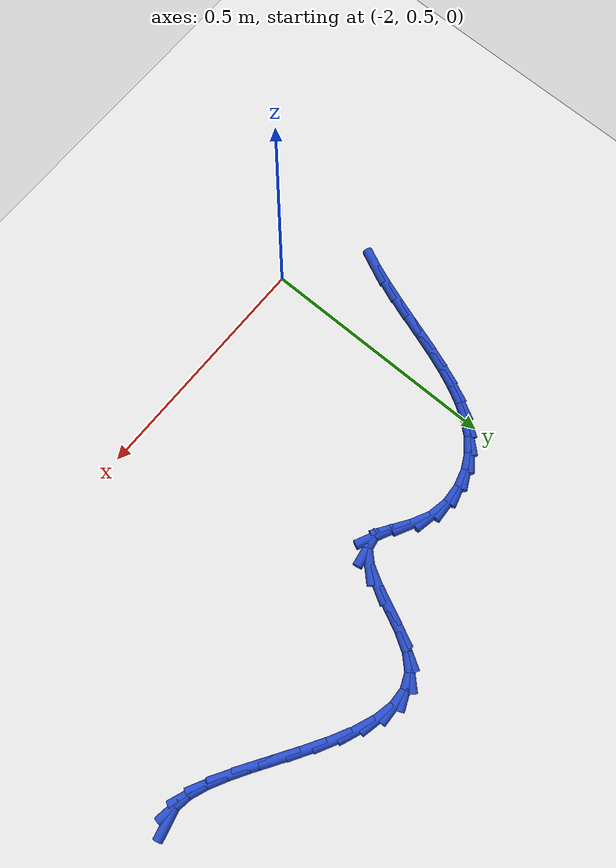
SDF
<sdf version="1.6">
 <world name="default">
  <model name="ground_plane">
   <static>1</static>
   <link name="link">
    <collision name="collision">
     <geometry><plane><normal>0 0 1</normal><size>100 100</size></plane></geometry>
     <surface><friction><ode><mu>100</mu><mu2>50</mu2></ode></friction></surface>
    </collision>
    <visual name="visual">
     <cast_shadows>0</cast_shadows>
     <geometry><plane><normal>0 0 1</normal><size>100 100</size></plane></geometry>
     <material>
      <script><uri>file://media/materials/scripts/gazebo.material</uri><name>Gazebo/WhiteGlow</name></script>
     </material>
    </visual>
   </link>
  </model>
  <model name="line">
   <link name="link_53">
    <pose>-1.0622385724257855 1.0256422005637924 0.01 0 1.57 0.23064214458469398</pose>
    <collision name="collision">
     <geometry><cylinder><radius>0.01</radius><length>0.08</length></cylinder></geometry>
    </collision>
    <visual name="visual">
     <material>
      <script><name>Gazebo/Blue</name><uri>file://media/materials/scripts/gazebo.material</uri></script>
     </material>
     <geometry><cylinder><radius>0.01</radius><length>0.08</length></cylinder></geometry>
    </visual>
   </link>
   <link name="link_54">
    <pose>-1.0879323075280776 1.0196087767915776 0.01 0 1.57 -0.15375915579281801</pose>
    <collision name="collision">
     <geometry><cylinder><radius>0.01</radius><length>0.08</length></cylinder></geometry>
    </collision>
    <visual name="visual">
     <material>
      <script><name>Gazebo/Blue</name><uri>file://media/materials/scripts/gazebo.material</uri></script>
     </material>
     <geometry><cylinder><radius>0.01</radius><length>0.08</length></cylinder></geometry>
    </visual>
   </link>
   <link name="link_55">
    <pose>-1.1184658002313381 1.0243409321093184 0.01 0 1.57 -0.3704330861370325</pose>
    <collision name="collision">
     <geometry><cylinder><radius>0.01</radius><length>0.08</length></cylinder></geometry>
    </collision>
    <visual name="visual">
     <material>
      <script><name>Gazebo/Blue</name><uri>file://media/materials/scripts/gazebo.material</uri></script>
     </material>
     <geometry><cylinder><radius>0.01</radius><length>0.08</length></cylinder></geometry>
    </visual>
   </link>
   <link name="link_56">
    <pose>-1.153041227740167 1.0377686964490336 0.01 0 1.57 -0.4875453235978983</pose>
    <collision name="collision">
     <geometry><cylinder><radius>0.01</radius><length>0.08</length></cylinder></geometry>
    </collision>
    <visual name="visual">
     <material>
      <script><name>Gazebo/Blue</name><uri>file://media/materials/scripts/gazebo.material</uri></script>
     </material>
     <geometry><cylinder><radius>0.01</radius><length>0.08</length></cylinder></geometry>
    </visual>
   </link>
   <link name="link_57">
    <pose>-1.1908607672591642 1.0578220997427414 0.01 0 1.57 -0.5485887633398006</pose>
    <collision name="collision">
     <geometry><cylinder><radius>0.01</radius><length>0.08</length></cylinder></geometry>
    </collision>
    <visual name="visual">
     <material>
      <script><name>Gazebo/Blue</name><uri>file://media/materials/scripts/gazebo.material</uri></script>
     </material>
     <geometry><cylinder><radius>0.01</radius><length>0.08</length></cylinder></geometry>
    </visual>
   </link>
   <link name="link_58">
    <pose>-1.231126595992929 1.0824311719224593 0.01 0 1.57 -0.5738633636244629</pose>
    <collision name="collision">
     <geometry><cylinder><radius>0.01</radius><length>0.08</length></cylinder></geometry>
    </collision>
    <visual name="visual">
     <material>
      <script><name>Gazebo/Blue</name><uri>file://media/materials/scripts/gazebo.material</uri></script>
     </material>
     <geometry><cylinder><radius>0.01</radius><length>0.08</length></cylinder></geometry>
    </visual>
   </link>
   <link name="link_59">
    <pose>-1.273040891146062 1.1095259429202065 0.01 0 1.57 -0.5716477082837806</pose>
    <collision name="collision">
     <geometry><cylinder><radius>0.01</radius><length>0.08</length></cylinder></geometry>
    </collision>
    <visual name="visual">
     <material>
      <script><name>Gazebo/Blue</name><uri>file://media/materials/scripts/gazebo.material</uri></script>
     </material>
     <geometry><cylinder><radius>0.01</radius><length>0.08</length></cylinder></geometry>
    </visual>
   </link>
   <link name="link_60">
    <pose>-1.315805829923162 1.137036442668 0.01 0 1.57 -0.5432584840086693</pose>
    <collision name="collision">
     <geometry><cylinder><radius>0.01</radius><length>0.08</length></cylinder></geometry>
    </collision>
    <visual name="visual">
     <material>
      <script><name>Gazebo/Blue</name><uri>file://media/materials/scripts/gazebo.material</uri></script>
     </material>
     <geometry><cylinder><radius>0.01</radius><length>0.08</length></cylinder></geometry>
    </visual>
   </link>
   <link name="link_61">
    <pose>-1.3586235895288297 1.1628927010978583 0.01 0 1.57 -0.48426368201422776</pose>
    <collision name="collision">
     <geometry><cylinder><radius>0.01</radius><length>0.08</length></cylinder></geometry>
    </collision>
    <visual name="visual">
     <material>
      <script><name>Gazebo/Blue</name><uri>file://media/materials/scripts/gazebo.material</uri></script>
     </material>
     <geometry><cylinder><radius>0.01</radius><length>0.08</length></cylinder></geometry>
    </visual>
   </link>
   <link name="link_62">
    <pose>-1.400696347167664 1.1850247481417997 0.01 0 1.57 -0.38318122949823424</pose>
    <collision name="collision">
     <geometry><cylinder><radius>0.01</radius><length>0.08</length></cylinder></geometry>
    </collision>
    <visual name="visual">
     <material>
      <script><name>Gazebo/Blue</name><uri>file://media/materials/scripts/gazebo.material</uri></script>
     </material>
     <geometry><cylinder><radius>0.01</radius><length>0.08</length></cylinder></geometry>
    </visual>
   </link>
   <link name="link_63">
    <pose>-1.441226280044266 1.2013626137318427 0.01 0 1.57 -0.21834967871028302</pose>
    <collision name="collision">
     <geometry><cylinder><radius>0.01</radius><length>0.08</length></cylinder></geometry>
    </collision>
    <visual name="visual">
     <material>
      <script><name>Gazebo/Blue</name><uri>file://media/materials/scripts/gazebo.material</uri></script>
     </material>
     <geometry><cylinder><radius>0.01</radius><length>0.08</length></cylinder></geometry>
    </visual>
   </link>
   <link name="link_64">
    <pose>-1.4794155653632335 1.2098363278000046 0.01 0 1.57 0.041641351532768274</pose>
    <collision name="collision">
     <geometry><cylinder><radius>0.01</radius><length>0.08</length></cylinder></geometry>
    </collision>
    <visual name="visual">
     <material>
      <script><name>Gazebo/Blue</name><uri>file://media/materials/scripts/gazebo.material</uri></script>
     </material>
     <geometry><cylinder><radius>0.01</radius><length>0.08</length></cylinder></geometry>
    </visual>
   </link>
   <link name="link_65">
    <pose>-1.5144663803291676 1.2083759202783042 0.01 0 1.57 0.4084082158583317</pose>
    <collision name="collision">
     <geometry><cylinder><radius>0.01</radius><length>0.08</length></cylinder></geometry>
    </collision>
    <visual name="visual">
     <material>
      <script><name>Gazebo/Blue</name><uri>file://media/materials/scripts/gazebo.material</uri></script>
     </material>
     <geometry><cylinder><radius>0.01</radius><length>0.08</length></cylinder></geometry>
    </visual>
   </link>
   <link name="link_66">
    <pose>-1.5455809021466682 1.194911421098759 0.01 0 1.57 0.7965346572013756</pose>
    <collision name="collision">
     <geometry><cylinder><radius>0.01</radius><length>0.08</length></cylinder></geometry>
    </collision>
    <visual name="visual">
     <material>
      <script><name>Gazebo/Blue</name><uri>file://media/materials/scripts/gazebo.material</uri></script>
     </material>
     <geometry><cylinder><radius>0.01</radius><length>0.08</length></cylinder></geometry>
    </visual>
   </link>
   <link name="link_67">
    <pose>-1.5720892115207314 1.1678060182665602 0.01 0 1.57 1.0317862784901017</pose>
    <collision name="collision">
     <geometry><cylinder><radius>0.01</radius><length>0.08</length></cylinder></geometry>
    </collision>
    <visual name="visual">
     <material>
      <script><name>Gazebo/Blue</name><uri>file://media/materials/scripts/gazebo.material</uri></script>
     </material>
     <geometry><cylinder><radius>0.01</radius><length>0.08</length></cylinder></geometry>
    </visual>
   </link>
   <link name="link_68">
    <pose>-1.5946820088326186 1.130030775220034 0.01 0 1.57 1.1290605640430258</pose>
    <collision name="collision">
     <geometry><cylinder><radius>0.01</radius><length>0.08</length></cylinder></geometry>
    </collision>
    <visual name="visual">
     <material>
      <script><name>Gazebo/Blue</name><uri>file://media/materials/scripts/gazebo.material</uri></script>
     </material>
     <geometry><cylinder><radius>0.01</radius><length>0.08</length></cylinder></geometry>
    </visual>
   </link>
   <link name="link_69">
    <pose>-1.6148713574030957 1.0873383836340151 0.01 0 1.57 1.138220194868814</pose>
    <collision name="collision">
     <geometry><cylinder><radius>0.01</radius><length>0.08</length></cylinder></geometry>
    </collision>
    <visual name="visual">
     <material>
      <script><name>Gazebo/Blue</name><uri>file://media/materials/scripts/gazebo.material</uri></script>
     </material>
     <geometry><cylinder><radius>0.01</radius><length>0.08</length></cylinder></geometry>
    </visual>
   </link>
   <link name="link_70">
    <pose>-1.6341806832297099 1.0455200160315063 0.01 0 1.57 1.0545456623109377</pose>
    <collision name="collision">
     <geometry><cylinder><radius>0.01</radius><length>0.08</length></cylinder></geometry>
    </collision>
    <visual name="visual">
     <material>
      <script><name>Gazebo/Blue</name><uri>file://media/materials/scripts/gazebo.material</uri></script>
     </material>
     <geometry><cylinder><radius>0.01</radius><length>0.08</length></cylinder></geometry>
    </visual>
   </link>
   <link name="link_71">
    <pose>-1.6541334123100049 1.0103668449355117 0.01 0 1.57 0.798277652305264</pose>
    <collision name="collision">
     <geometry><cylinder><radius>0.01</radius><length>0.08</length></cylinder></geometry>
    </collision>
    <visual name="visual">
     <material>
      <script><name>Gazebo/Blue</name><uri>file://media/materials/scripts/gazebo.material</uri></script>
     </material>
     <geometry><cylinder><radius>0.01</radius><length>0.08</length></cylinder></geometry>
    </visual>
   </link>
   <link name="link_72">
    <pose>-1.6762529706415275 0.9876700428690336 0.01 0 1.57 0.17111370114996938</pose>
    <collision name="collision">
     <geometry><cylinder><radius>0.01</radius><length>0.08</length></cylinder></geometry>
    </collision>
    <visual name="visual">
     <material>
      <script><name>Gazebo/Blue</name><uri>file://media/materials/scripts/gazebo.material</uri></script>
     </material>
     <geometry><cylinder><radius>0.01</radius><length>0.08</length></cylinder></geometry>
    </visual>
   </link>
   <link name="link_73">
    <pose>-1.7020614315523686 0.9832102489607192 0.01 0 1.57 -0.4556743477530194</pose>
    <collision name="collision">
     <geometry><cylinder><radius>0.01</radius><length>0.08</length></cylinder></geometry>
    </collision>
    <visual name="visual">
     <material>
      <script><name>Gazebo/Blue</name><uri>file://media/materials/scripts/gazebo.material</uri></script>
     </material>
     <geometry><cylinder><radius>0.01</radius><length>0.08</length></cylinder></geometry>
    </visual>
   </link>
   <link name="link_74">
    <pose>-1.7324839044844975 0.9981194751247711 0.01 0 1.57 -0.5985790229823945</pose>
    <collision name="collision">
     <geometry><cylinder><radius>0.01</radius><length>0.08</length></cylinder></geometry>
    </collision>
    <visual name="visual">
     <material>
      <script><name>Gazebo/Blue</name><uri>file://media/materials/scripts/gazebo.material</uri></script>
     </material>
     <geometry><cylinder><radius>0.01</radius><length>0.08</length></cylinder></geometry>
    </visual>
   </link>
   <link name="link_75">
    <pose>-1.766913837302748 1.0216025064259013 0.01 0 1.57 -0.47738661372117364</pose>
    <collision name="collision">
     <geometry><cylinder><radius>0.01</radius><length>0.08</length></cylinder></geometry>
    </collision>
    <visual name="visual">
     <material>
      <script><name>Gazebo/Blue</name><uri>file://media/materials/scripts/gazebo.material</uri></script>
     </material>
     <geometry><cylinder><radius>0.01</radius><length>0.08</length></cylinder></geometry>
    </visual>
   </link>
   <link name="link_76">
    <pose>-1.804495347901011 1.0410431829433733 0.01 0 1.57 -0.19990754112329895</pose>
    <collision name="collision">
     <geometry><cylinder><radius>0.01</radius><length>0.08</length></cylinder></geometry>
    </collision>
    <visual name="visual">
     <material>
      <script><name>Gazebo/Blue</name><uri>file://media/materials/scripts/gazebo.material</uri></script>
     </material>
     <geometry><cylinder><radius>0.01</radius><length>0.08</length></cylinder></geometry>
    </visual>
   </link>
   <link name="link_77">
    <pose>-1.8438077189204876 1.049008411003956 0.01 0 1.57 0.053767625382339194</pose>
    <collision name="collision">
     <geometry><cylinder><radius>0.01</radius><length>0.08</length></cylinder></geometry>
    </collision>
    <visual name="visual">
     <material>
      <script><name>Gazebo/Blue</name><uri>file://media/materials/scripts/gazebo.material</uri></script>
     </material>
     <geometry><cylinder><radius>0.01</radius><length>0.08</length></cylinder></geometry>
    </visual>
   </link>
   <link name="link_78">
    <pose>-1.8824643877965028 1.0469279284645692 0.01 0 1.57 0.27005372441491277</pose>
    <collision name="collision">
     <geometry><cylinder><radius>0.01</radius><length>0.08</length></cylinder></geometry>
    </collision>
    <visual name="visual">
     <material>
      <script><name>Gazebo/Blue</name><uri>file://media/materials/scripts/gazebo.material</uri></script>
     </material>
     <geometry><cylinder><radius>0.01</radius><length>0.08</length></cylinder></geometry>
    </visual>
   </link>
   <link name="link_79">
    <pose>-1.9179997420239243 1.0370911746953775 0.01 0 1.57 0.4734905389199982</pose>
    <collision name="collision">
     <geometry><cylinder><radius>0.01</radius><length>0.08</length></cylinder></geometry>
    </collision>
    <visual name="visual">
     <material>
      <script><name>Gazebo/Blue</name><uri>file://media/materials/scripts/gazebo.material</uri></script>
     </material>
     <geometry><cylinder><radius>0.01</radius><length>0.08</length></cylinder></geometry>
    </visual>
   </link>
   <link name="link_80">
    <pose>-1.9490303865350185 1.0211921611513424 0.01 0 1.57 0.6681683856602351</pose>
    <collision name="collision">
     <geometry><cylinder><radius>0.01</radius><length>0.08</length></cylinder></geometry>
    </collision>
    <visual name="visual">
     <material>
      <script><name>Gazebo/Blue</name><uri>file://media/materials/scripts/gazebo.material</uri></script>
     </material>
     <geometry><cylinder><radius>0.01</radius><length>0.08</length></cylinder></geometry>
    </visual>
   </link>
   <link name="link_81">
    <pose>-1.975941452641117 0.9999518693412468 0.01 0 1.57 0.8383107403914253</pose>
    <collision name="collision">
     <geometry><cylinder><radius>0.01</radius><length>0.08</length></cylinder></geometry>
    </collision>
    <visual name="visual">
     <material>
      <script><name>Gazebo/Blue</name><uri>file://media/materials/scripts/gazebo.material</uri></script>
     </material>
     <geometry><cylinder><radius>0.01</radius><length>0.08</length></cylinder></geometry>
    </visual>
   </link>
   <link name="link_82">
    <pose>-1.9992813709518307 0.97400143472504 0.01 0 1.57 0.9759647227715307</pose>
    <collision name="collision">
     <geometry><cylinder><radius>0.01</radius><length>0.08</length></cylinder></geometry>
    </collision>
    <visual name="visual">
     <material>
      <script><name>Gazebo/Blue</name><uri>file://media/materials/scripts/gazebo.material</uri></script>
     </material>
     <geometry><cylinder><radius>0.01</radius><length>0.08</length></cylinder></geometry>
    </visual>
   </link>
   <link name="link_83">
    <pose>-2.019598572076773 0.9439719927626696 0.01 0 1.57 1.0811100374972755</pose>
    <collision name="collision">
     <geometry><cylinder><radius>0.01</radius><length>0.08</length></cylinder></geometry>
    </collision>
    <visual name="visual">
     <material>
      <script><name>Gazebo/Blue</name><uri>file://media/materials/scripts/gazebo.material</uri></script>
     </material>
     <geometry><cylinder><radius>0.01</radius><length>0.08</length></cylinder></geometry>
    </visual>
   </link>
   <link name="link_84">
    <pose>-2.037441486625556 0.9104946789140858 0.01 0 1.57 1.1574979156431469</pose>
    <collision name="collision">
     <geometry><cylinder><radius>0.01</radius><length>0.08</length></cylinder></geometry>
    </collision>
    <visual name="visual">
     <material>
      <script><name>Gazebo/Blue</name><uri>file://media/materials/scripts/gazebo.material</uri></script>
     </material>
     <geometry><cylinder><radius>0.01</radius><length>0.08</length></cylinder></geometry>
    </visual>
   </link>
   <link name="link_85">
    <pose>-2.053358545207792 0.8742006286392352 0.01 0 1.57 1.209527164599635</pose>
    <collision name="collision">
     <geometry><cylinder><radius>0.01</radius><length>0.08</length></cylinder></geometry>
    </collision>
    <visual name="visual">
     <material>
      <script><name>Gazebo/Blue</name><uri>file://media/materials/scripts/gazebo.material</uri></script>
     </material>
     <geometry><cylinder><radius>0.01</radius><length>0.08</length></cylinder></geometry>
    </visual>
   </link>
   <link name="link_86">
    <pose>-2.0678981784330954 0.8357209773980682 0.01 0 1.57 1.2408419794130134</pose>
    <collision name="collision">
     <geometry><cylinder><radius>0.01</radius><length>0.08</length></cylinder></geometry>
    </collision>
    <visual name="visual">
     <material>
      <script><name>Gazebo/Blue</name><uri>file://media/materials/scripts/gazebo.material</uri></script>
     </material>
     <geometry><cylinder><radius>0.01</radius><length>0.08</length></cylinder></geometry>
    </visual>
   </link>
   <link name="link_87">
    <pose>-2.0816088169110762 0.7956868606505323 0.01 0 1.57 1.2539409053647543</pose>
    <collision name="collision">
     <geometry><cylinder><radius>0.01</radius><length>0.08</length></cylinder></geometry>
    </collision>
    <visual name="visual">
     <material>
      <script><name>Gazebo/Blue</name><uri>file://media/materials/scripts/gazebo.material</uri></script>
     </material>
     <geometry><cylinder><radius>0.01</radius><length>0.08</length></cylinder></geometry>
    </visual>
   </link>
   <link name="link_88">
    <pose>-2.0950388912513485 0.7547294138565759 0.01 0 1.57 1.2501794386859513</pose>
    <collision name="collision">
     <geometry><cylinder><radius>0.01</radius><length>0.08</length></cylinder></geometry>
    </collision>
    <visual name="visual">
     <material>
      <script><name>Gazebo/Blue</name><uri>file://media/materials/scripts/gazebo.material</uri></script>
     </material>
     <geometry><cylinder><radius>0.01</radius><length>0.08</length></cylinder></geometry>
    </visual>
   </link>
   <link name="link_89">
    <pose>-2.1087368320635242 0.7134797724761484 0.01 0 1.57 1.2298708304703576</pose>
    <collision name="collision">
     <geometry><cylinder><radius>0.01</radius><length>0.08</length></cylinder></geometry>
    </collision>
    <visual name="visual">
     <material>
      <script><name>Gazebo/Blue</name><uri>file://media/materials/scripts/gazebo.material</uri></script>
     </material>
     <geometry><cylinder><radius>0.01</radius><length>0.08</length></cylinder></geometry>
    </visual>
   </link>
   <link name="link_90">
    <pose>-2.1232510699572167 0.6725690719691977 0.01 0 1.57 1.1923914682861734</pose>
    <collision name="collision">
     <geometry><cylinder><radius>0.01</radius><length>0.08</length></cylinder></geometry>
    </collision>
    <visual name="visual">
     <material>
      <script><name>Gazebo/Blue</name><uri>file://media/materials/scripts/gazebo.material</uri></script>
     </material>
     <geometry><cylinder><radius>0.01</radius><length>0.08</length></cylinder></geometry>
    </visual>
   </link>
   <link name="link_91">
    <pose>-2.139130035542037 0.632628447795673 0.01 0 1.57 1.1366343366151208</pose>
    <collision name="collision">
     <geometry><cylinder><radius>0.01</radius><length>0.08</length></cylinder></geometry>
    </collision>
    <visual name="visual">
     <material>
      <script><name>Gazebo/Blue</name><uri>file://media/materials/scripts/gazebo.material</uri></script>
     </material>
     <geometry><cylinder><radius>0.01</radius><length>0.08</length></cylinder></geometry>
    </visual>
   </link>
  </model>
 </world>
</sdf>
